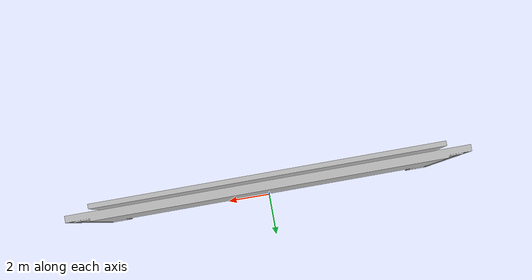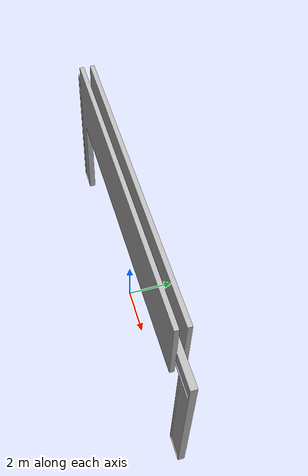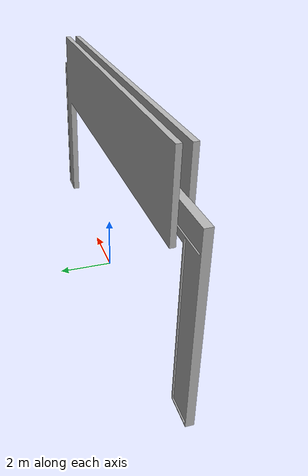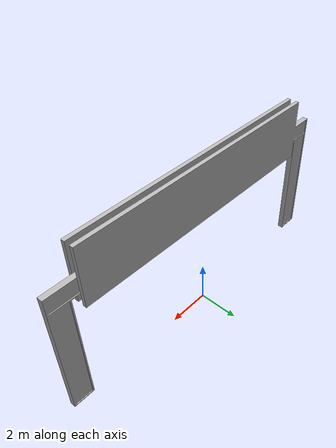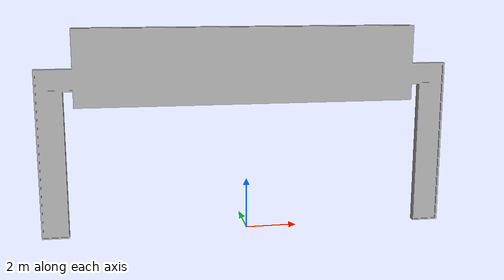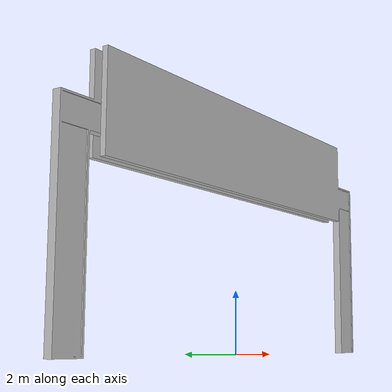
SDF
<?xml version='1.0'?>
<sdf version='1.6'>
  <model name='aws_Billboard_01'>
    <link name='body'>
      <pose frame=''>0 0 0 0 -0 0</pose>
      <self_collide>0</self_collide>
      <kinematic>0</kinematic>
      <gravity>1</gravity>
      <inertial>
        <mass>1000</mass>
	<inertia>
	    <ixx>  2.6210918966e+00 </ixx>
	    <ixy> -5.1471867928e-03 </ixy>
	    <ixz>  9.1895046619e-06 </ixz>
	    <iyy>  2.2366474618e+01 </iyy>
	    <iyz>  5.0424522831e-04 </iyz>
	    <izz>  2.4925147578e+01 </izz>
	  </inertia>
	</inertial>
      <visual name='visual'>
        <geometry>
          <mesh>
            <uri>file://models/aws_robomaker_racetrack_Billboard_01/meshes/aws_Billboard_01_visual.DAE</uri>
          </mesh>
        </geometry>
        <material>
          <shader type='pixel'>
            <normal_map>__default__</normal_map>
          </shader>
        </material>
        <pose frame=''>0 0 0 0 -0 0</pose>
        <cast_shadows>1</cast_shadows>
        <transparency>0</transparency>
        <meta>
          <layer>2</layer>
        </meta>
      </visual>
      <collision name='collision_0'>
        <laser_retro>0</laser_retro>
        <max_contacts>10</max_contacts>
        <pose frame=''>0 0 0 0 -0 0</pose>
        <geometry>
          <mesh>
            <uri>file://models/aws_robomaker_racetrack_Billboard_01/meshes/aws_Billboard_01_collision.DAE</uri>
            <scale>1 1 1</scale>
          </mesh>
        </geometry>
        <surface>
          <friction>
            <ode>
              <mu>1</mu>
              <mu2>1</mu2>
              <fdir1>0 0 0</fdir1>
              <slip1>0</slip1>
              <slip2>0</slip2>
            </ode>
            <torsional>
              <coefficient>1</coefficient>
              <patch_radius>0</patch_radius>
              <surface_radius>0</surface_radius>
              <use_patch_radius>1</use_patch_radius>
              <ode>
                <slip>0</slip>
              </ode>
            </torsional>
          </friction>
          <bounce>
            <restitution_coefficient>0</restitution_coefficient>
            <threshold>1e+06</threshold>
          </bounce>
          <contact>
            <collide_without_contact>0</collide_without_contact>
            <collide_without_contact_bitmask>1</collide_without_contact_bitmask>
            <collide_bitmask>1</collide_bitmask>
            <ode>
              <soft_cfm>0</soft_cfm>
              <soft_erp>0.2</soft_erp>
              <kp>1e+13</kp>
              <kd>1</kd>
              <max_vel>0.01</max_vel>
              <min_depth>0</min_depth>
            </ode>
            <bullet>
              <split_impulse>1</split_impulse>
              <split_impulse_penetration_threshold>-0.01</split_impulse_penetration_threshold>
              <soft_cfm>0</soft_cfm>
              <soft_erp>0.2</soft_erp>
              <kp>1e+13</kp>
              <kd>1</kd>
            </bullet>
          </contact>
        </surface>
      </collision>
    </link>
    <static>true</static>
  </model>
</sdf>
